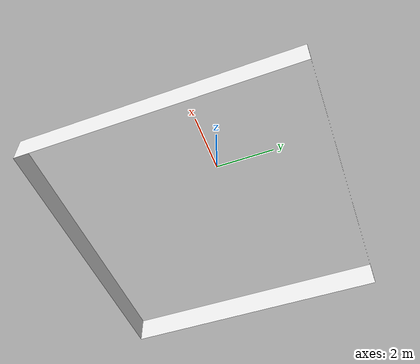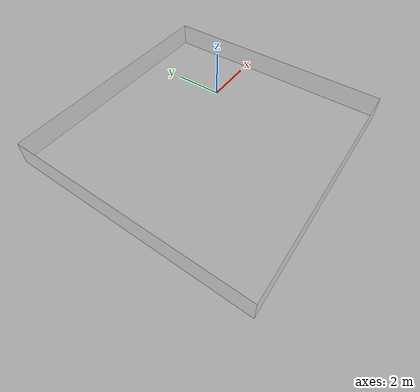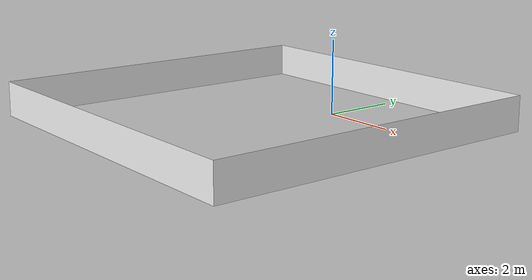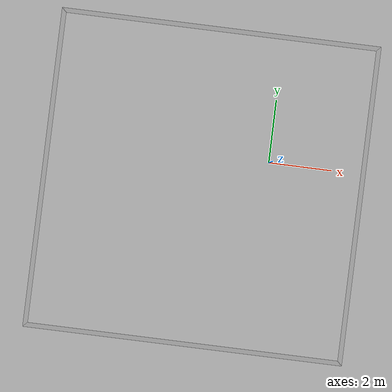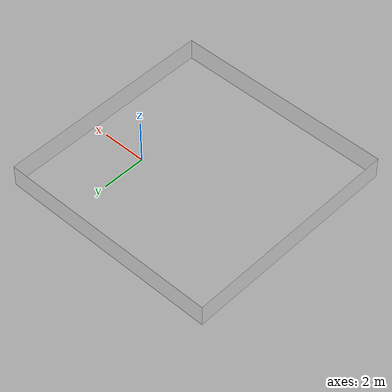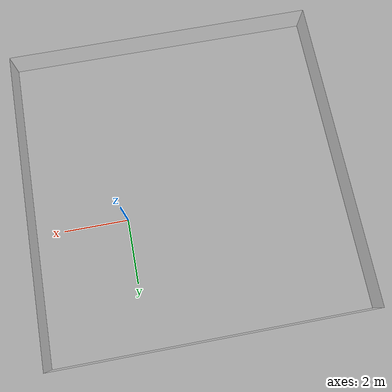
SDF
<?xml version='1.0'?>
<sdf version='1.4'>
  <model name='playground_limits'>
    <link name='Wall_right'>
      <collision name='Wall_right_Collision'>
        <geometry>
          <box>
            <size>10.0 0 1</size>
          </box>
        </geometry>
        <pose>0 0 0 0 0 0</pose>
      </collision>
      <visual name='Wall_right_Visual'>
        <pose>0 0 0 0 0 0</pose>
        <geometry>
          <box>
            <size>10.0 0 1</size>
          </box>
        </geometry>
        <material>
          <script>
            <uri>file://media/materials/scripts/gazebo.material</uri>
            <name>Gazebo/WhiteGlow</name>
          </script>
        </material>
      </visual>
      <velocity_decay>
        <linear>0</linear>
        <angular>0</angular>
      </velocity_decay>
      <pose>-2.0 4.0 0 0 0 0</pose>
    </link>
    <link name='Wall_left'>
      <collision name='Wall_left_Collision'>
        <geometry>
          <box>
            <size>10.0 0 1</size>
          </box>
        </geometry>
        <pose>0 0 0 0 0 0</pose>
      </collision>
      <visual name='Wall_left_Visual'>
        <pose>0 0 0 0 0 0</pose>
        <geometry>
          <box>
            <size>10.0 0 1</size>
          </box>
        </geometry>
        <material>
          <script>
            <uri>file://media/materials/scripts/gazebo.material</uri>
            <name>Gazebo/WhiteGlow</name>
          </script>
        </material>
      </visual>
      <velocity_decay>
        <linear>0</linear>
        <angular>0</angular>
      </velocity_decay>
      <pose>-2.0 -6.0 0 0 0 0</pose>
    </link>
    <link name='Wall_back'>
      <collision name='Wall_back_Collision'>
        <geometry>
          <box>
            <size>10.0 0 1</size>
          </box>
        </geometry>
        <pose>0 0 0 0 0 0</pose>
      </collision>
      <visual name='Wall_back_Visual'>
        <pose>0 0 0 0 0 0</pose>
        <geometry>
          <box>
            <size>10.0 0 1</size>
          </box>
        </geometry>
        <material>
          <script>
            <uri>file://media/materials/scripts/gazebo.material</uri>
            <name>Gazebo/WhiteGlow</name>
          </script>
        </material>
      </visual>
      <velocity_decay>
        <linear>0</linear>
        <angular>0</angular>
      </velocity_decay>
      <pose>3.0 -1.0 0 0 0 1.57079632679</pose>
    </link>
    <link name='Wall_outside'>
      <collision name='Wall_outside_Collision'>
        <geometry>
          <box>
            <size>10.0 0 1</size>
          </box>
        </geometry>
        <pose>0 0 0 0 0 0</pose>
      </collision>
      <visual name='Wall_outside_Visual'>
        <pose>0 0 0 0 0 0</pose>
        <geometry>
          <box>
            <size>10.0 0 1</size>
          </box>
        </geometry>
        <material>
          <script>
            <uri>file://media/materials/scripts/gazebo.material</uri>
            <name>Gazebo/WhiteGlow</name>
          </script>
        </material>
      </visual>
      <velocity_decay>
        <linear>0</linear>
        <angular>0</angular>
      </velocity_decay>
      <pose>-7.0 -1.0 0 0 0 1.57079632679</pose>
    </link>
    <static>1</static>
  </model>
</sdf>
